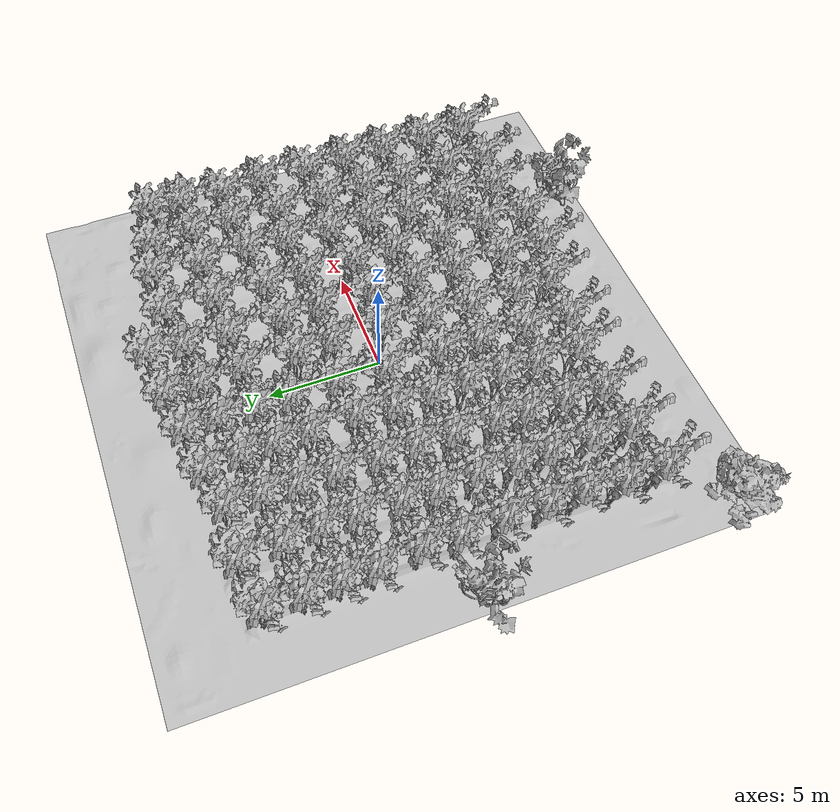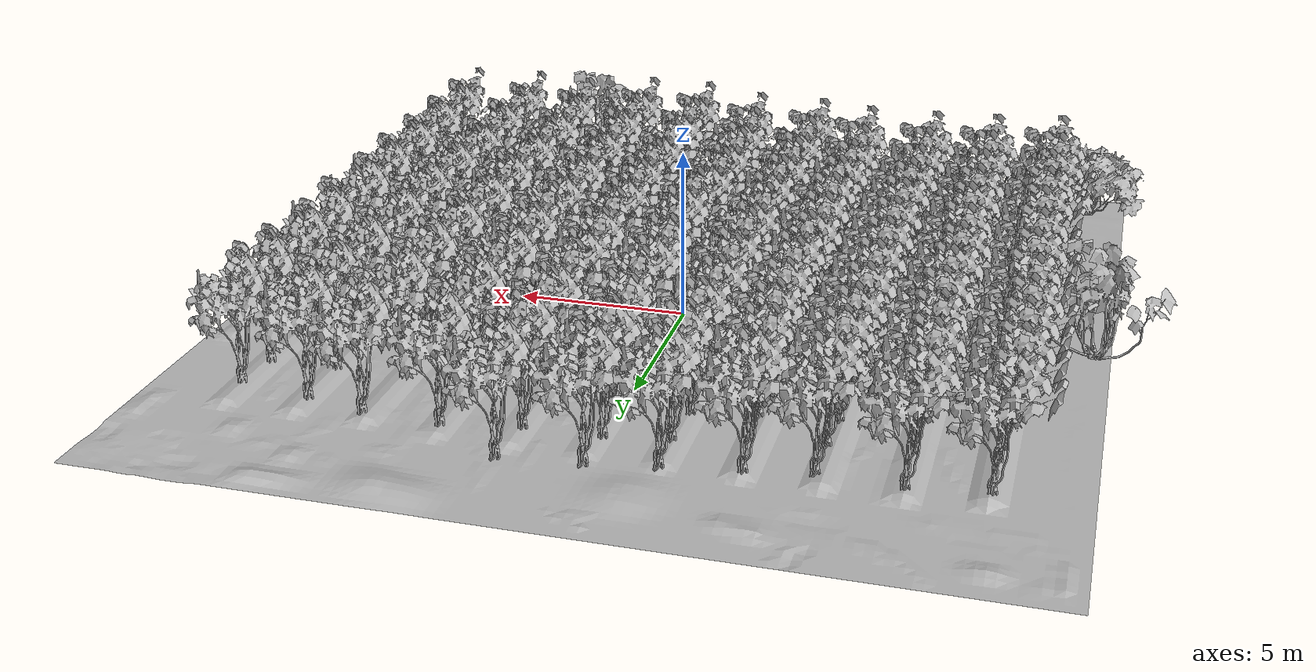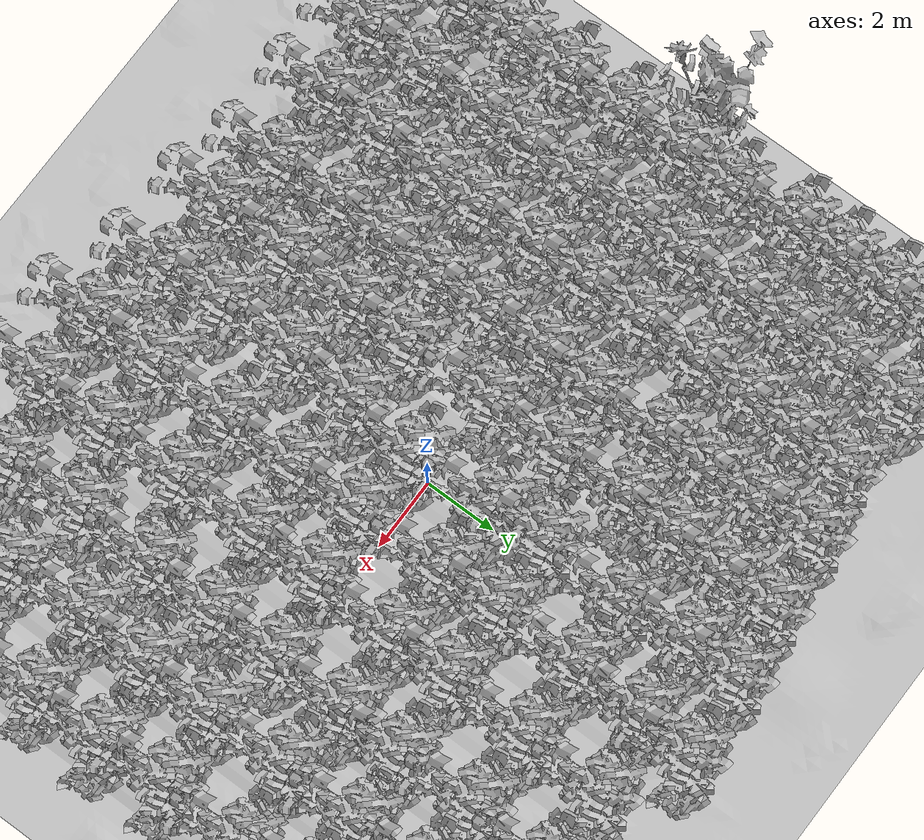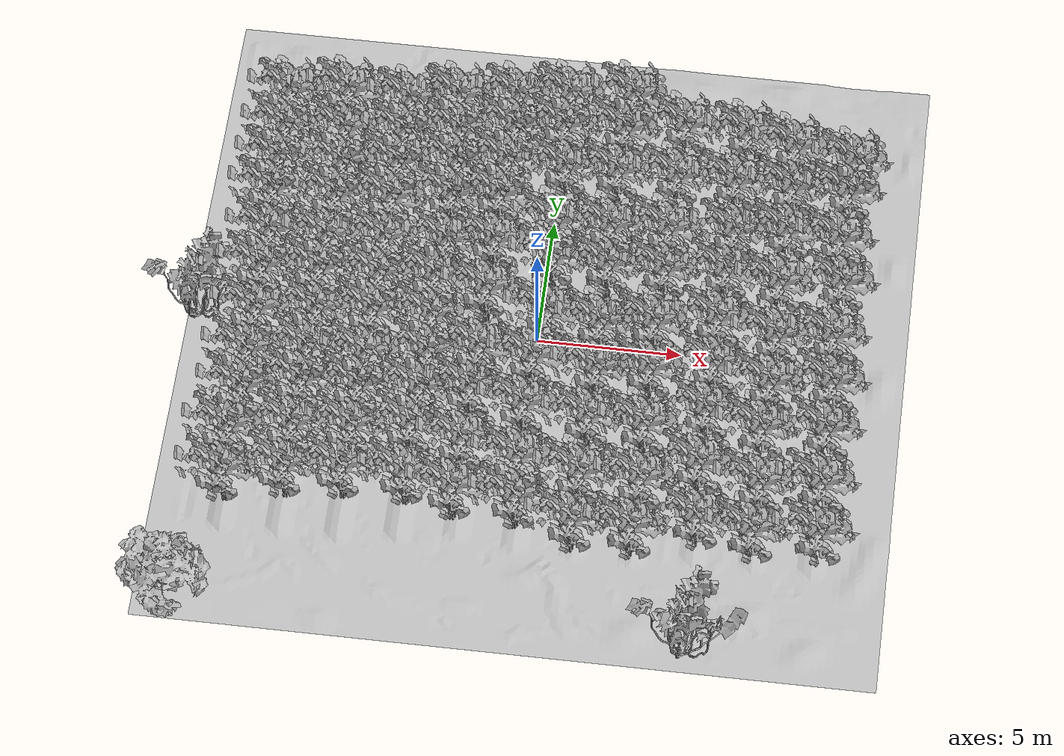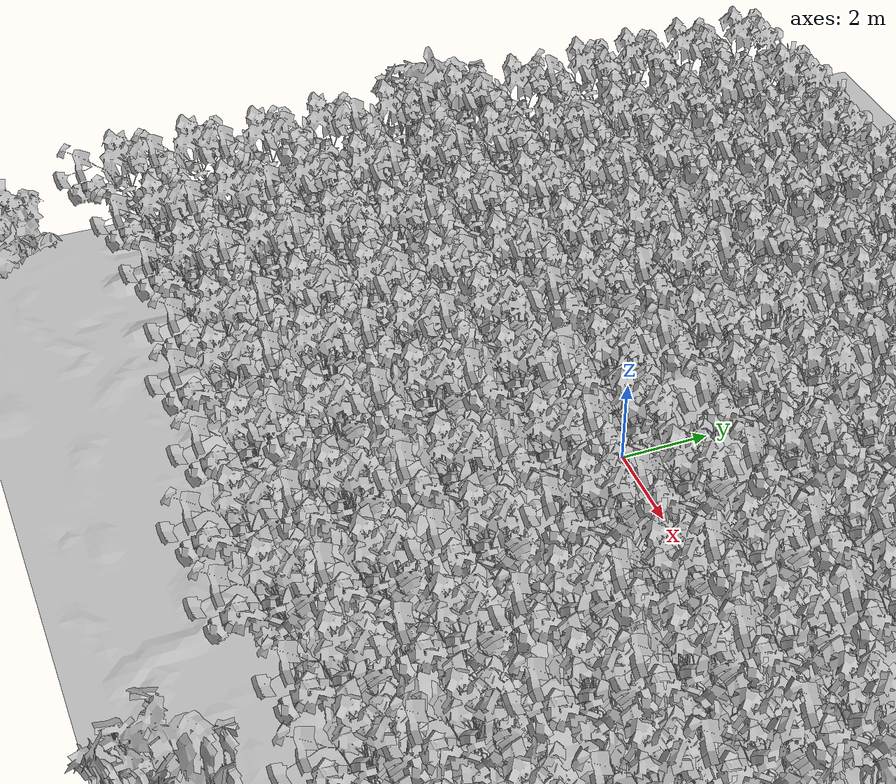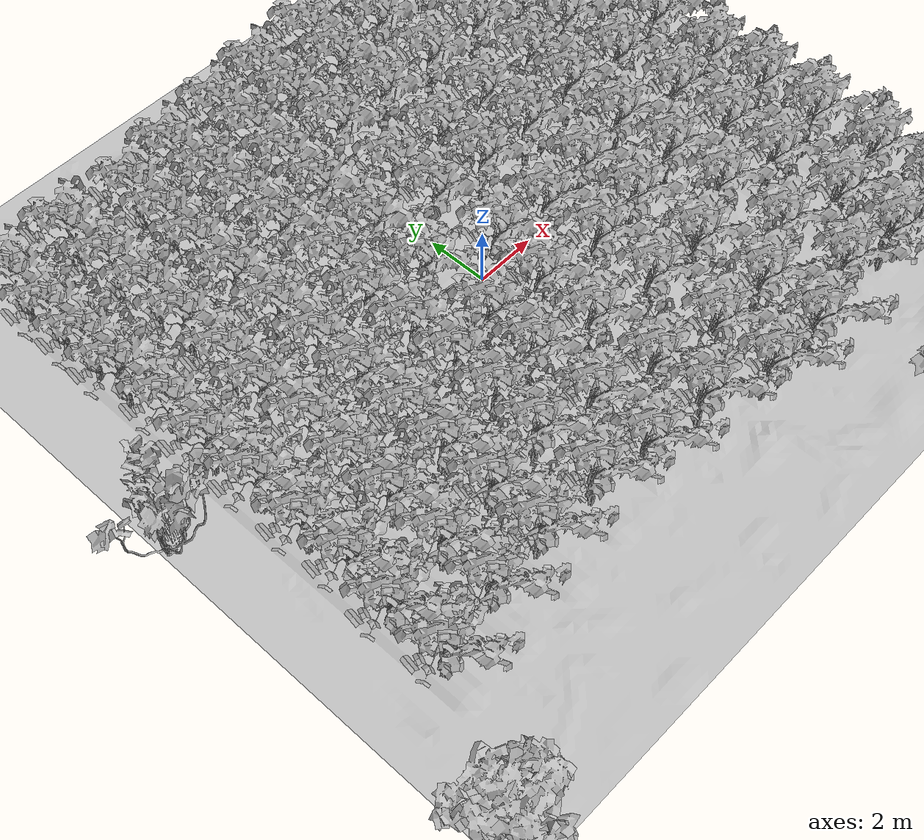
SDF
<sdf version="1.7">
 <world name="default">
  <light name="sun" type="directional">
   <pose>0 0 10 0 -0 0</pose>
   <diffuse>0.8 0.8 0.8 1</diffuse>
   <specular>0.2 0.2 0.2 1</specular>
   <attenuation>
    <range>1000</range>
    <constant>0.9</constant>
    <linear>0.01</linear>
    <quadratic>0.001</quadratic>
   </attenuation>
   <direction>-0.5 0.1 -0.9</direction>
   <spot><inner_angle>0</inner_angle><outer_angle>0</outer_angle><falloff>0</falloff></spot>
  </light>
  <physics type="ode">
   <max_step_size>0.001</max_step_size>
   <real_time_factor>1</real_time_factor>
   <real_time_update_rate>1000</real_time_update_rate>
  </physics>
  <scene><ambient>0.4 0.4 0.4 1</ambient><background>0.7 0.7 0.7 1</background><shadows>1</shadows></scene>
  <spherical_coordinates>
   <surface_model>EARTH_WGS84</surface_model>
   <latitude_deg>0</latitude_deg>
   <longitude_deg>0</longitude_deg>
   <elevation>0</elevation>
   <heading_deg>0</heading_deg>
  </spherical_coordinates>
  <gravity>0 0 -9.8</gravity>
  <magnetic_field>6e-06 2.3e-05 -4.2e-05</magnetic_field>
  <atmosphere type="adiabatic"/>
  <model name="terrain_2">
   <pose>0.265856 -0.094206 0 0 -0 0</pose>
   <static>1</static>
   <link name="body">
    <visual name="visual">
     <geometry><mesh><uri>model://terrain_2/media/terrain_2.dae</uri></mesh></geometry>
     <material>
      <script>
       <uri>model://terrain_2/media/scripts</uri>
       <uri>model://terrain_2/media/Textures</uri>
       <name>RepeatedGrass/Diffuse</name>
      </script>
     </material>
    </visual>
    <collision name="collision">
     <geometry><mesh><uri>model://terrain_2/media/terrain_2.dae</uri></mesh></geometry>
    </collision>
   </link>
  </model>
  <model name="Bush 3">
   <static>1</static>
   <pose>-11.0807 -11.2332 0 1.57079 -0 0</pose>
   <link name="link">
    <collision name="collision">
     <geometry><mesh><scale>5 5 5</scale><uri>model://bush_3/meshes/bush_3.obj</uri></mesh></geometry>
    </collision>
    <visual name="visual">
     <geometry><mesh><scale>5 5 5</scale><uri>model://bush_3/meshes/bush_3.obj</uri></mesh></geometry>
    </visual>
   </link>
  </model>
  <model name="Bush 4">
   <static>1</static>
   <pose>6.33665 -11.7657 0 1.57079 -0 0</pose>
   <link name="link">
    <collision name="collision">
     <geometry><mesh><scale>5 5 5</scale><uri>model://bush_4/meshes/bush_4.obj</uri></mesh></geometry>
    </collision>
    <visual name="visual">
     <geometry><mesh><scale>5 5 5</scale><uri>model://bush_4/meshes/bush_4.obj</uri></mesh></geometry>
    </visual>
   </link>
  </model>
  <model name="Bush 5">
   <static>1</static>
   <pose>2.12509 -8.37314 0 1.57079 -0 0</pose>
   <link name="link">
    <collision name="collision">
     <geometry><mesh><scale>5 5 5</scale><uri>model://bush_5/meshes/bush_5.obj</uri></mesh></geometry>
    </collision>
    <visual name="visual">
     <geometry><mesh><scale>5 5 5</scale><uri>model://bush_5/meshes/bush_5.obj</uri></mesh></geometry>
    </visual>
   </link>
  </model>
  <model name="Bush 4_0">
   <static>1</static>
   <pose>-11.8132 -0.203286 0 1.57079 -0 0</pose>
   <link name="link">
    <collision name="collision">
     <geometry><mesh><scale>5 5 5</scale><uri>model://bush_4/meshes/bush_4.obj</uri></mesh></geometry>
    </collision>
    <visual name="visual">
     <geometry><mesh><scale>5 5 5</scale><uri>model://bush_4/meshes/bush_4.obj</uri></mesh></geometry>
    </visual>
   </link>
  </model>
  <model name="Bush 5_0">
   <static>1</static>
   <pose>2.18418 -6.49246 0 1.57079 -0 0</pose>
   <link name="link">
    <collision name="collision">
     <geometry><mesh><scale>5 5 5</scale><uri>model://bush_5/meshes/bush_5.obj</uri></mesh></geometry>
    </collision>
    <visual name="visual">
     <geometry><mesh><scale>5 5 5</scale><uri>model://bush_5/meshes/bush_5.obj</uri></mesh></geometry>
    </visual>
   </link>
  </model>
  <model name="Bush 5_1">
   <static>1</static>
   <pose>2.20313 -4.25197 0 1.57079 -0 0</pose>
   <link name="link">
    <collision name="collision">
     <geometry><mesh><scale>5 5 5</scale><uri>model://bush_5/meshes/bush_5.obj</uri></mesh></geometry>
    </collision>
    <visual name="visual">
     <geometry><mesh><scale>5 5 5</scale><uri>model://bush_5/meshes/bush_5.obj</uri></mesh></geometry>
    </visual>
   </link>
  </model>
  <model name="Bush 5_2">
   <static>1</static>
   <pose>2.26365 -2.27175 0 1.57079 -0 0</pose>
   <link name="link">
    <collision name="collision">
     <geometry><mesh><scale>5 5 5</scale><uri>model://bush_5/meshes/bush_5.obj</uri></mesh></geometry>
    </collision>
    <visual name="visual">
     <geometry><mesh><scale>5 5 5</scale><uri>model://bush_5/meshes/bush_5.obj</uri></mesh></geometry>
    </visual>
   </link>
  </model>
  <model name="Bush 5_3">
   <static>1</static>
   <pose>2.19014 -0.397493 0 1.57079 -0 0</pose>
   <link name="link">
    <collision name="collision">
     <geometry><mesh><scale>5 5 5</scale><uri>model://bush_5/meshes/bush_5.obj</uri></mesh></geometry>
    </collision>
    <visual name="visual">
     <geometry><mesh><scale>5 5 5</scale><uri>model://bush_5/meshes/bush_5.obj</uri></mesh></geometry>
    </visual>
   </link>
  </model>
  <model name="Bush 5_4">
   <static>1</static>
   <pose>2.19123 2.04673 0 1.57079 -0 0</pose>
   <link name="link">
    <collision name="collision">
     <geometry><mesh><scale>5 5 5</scale><uri>model://bush_5/meshes/bush_5.obj</uri></mesh></geometry>
    </collision>
    <visual name="visual">
     <geometry><mesh><scale>5 5 5</scale><uri>model://bush_5/meshes/bush_5.obj</uri></mesh></geometry>
    </visual>
   </link>
  </model>
  <model name="Bush 5_5">
   <static>1</static>
   <pose>2.10999 3.6697 0 1.57079 -0 0</pose>
   <link name="link">
    <collision name="collision">
     <geometry><mesh><scale>5 5 5</scale><uri>model://bush_5/meshes/bush_5.obj</uri></mesh></geometry>
    </collision>
    <visual name="visual">
     <geometry><mesh><scale>5 5 5</scale><uri>model://bush_5/meshes/bush_5.obj</uri></mesh></geometry>
    </visual>
   </link>
  </model>
  <model name="Bush 5_6">
   <static>1</static>
   <pose>2.09832 6.0356 0 1.57079 -0 0</pose>
   <link name="link">
    <collision name="collision">
     <geometry><mesh><scale>5 5 5</scale><uri>model://bush_5/meshes/bush_5.obj</uri></mesh></geometry>
    </collision>
    <visual name="visual">
     <geometry><mesh><scale>5 5 5</scale><uri>model://bush_5/meshes/bush_5.obj</uri></mesh></geometry>
    </visual>
   </link>
  </model>
  <model name="Bush 5_7">
   <static>1</static>
   <pose>2.14481 7.91716 0 1.57079 -0 0</pose>
   <link name="link">
    <collision name="collision">
     <geometry><mesh><scale>5 5 5</scale><uri>model://bush_5/meshes/bush_5.obj</uri></mesh></geometry>
    </collision>
    <visual name="visual">
     <geometry><mesh><scale>5 5 5</scale><uri>model://bush_5/meshes/bush_5.obj</uri></mesh></geometry>
    </visual>
   </link>
  </model>
  <model name="Bush 5_8">
   <static>1</static>
   <pose>2.3116 9.46119 0 1.57079 -0 0</pose>
   <link name="link">
    <collision name="collision">
     <geometry><mesh><scale>5 5 5</scale><uri>model://bush_5/meshes/bush_5.obj</uri></mesh></geometry>
    </collision>
    <visual name="visual">
     <geometry><mesh><scale>5 5 5</scale><uri>model://bush_5/meshes/bush_5.obj</uri></mesh></geometry>
    </visual>
   </link>
  </model>
  <model name="Bush 5_9">
   <static>1</static>
   <pose>0.171395 -7.68121 0 1.57079 -0 0</pose>
   <link name="link">
    <collision name="collision">
     <geometry><mesh><scale>5 5 5</scale><uri>model://bush_5/meshes/bush_5.obj</uri></mesh></geometry>
    </collision>
    <visual name="visual">
     <geometry><mesh><scale>5 5 5</scale><uri>model://bush_5/meshes/bush_5.obj</uri></mesh></geometry>
    </visual>
   </link>
  </model>
  <model name="Bush 5_10">
   <static>1</static>
   <pose>0.052477 -6.12295 0 1.57079 -0 0</pose>
   <link name="link">
    <collision name="collision">
     <geometry><mesh><scale>5 5 5</scale><uri>model://bush_5/meshes/bush_5.obj</uri></mesh></geometry>
    </collision>
    <visual name="visual">
     <geometry><mesh><scale>5 5 5</scale><uri>model://bush_5/meshes/bush_5.obj</uri></mesh></geometry>
    </visual>
   </link>
  </model>
  <model name="Bush 5_11">
   <static>1</static>
   <pose>-0.011281 -3.99126 0 1.57079 -0 0</pose>
   <link name="link">
    <collision name="collision">
     <geometry><mesh><scale>5 5 5</scale><uri>model://bush_5/meshes/bush_5.obj</uri></mesh></geometry>
    </collision>
    <visual name="visual">
     <geometry><mesh><scale>5 5 5</scale><uri>model://bush_5/meshes/bush_5.obj</uri></mesh></geometry>
    </visual>
   </link>
  </model>
  <model name="Bush 5_12">
   <static>1</static>
   <pose>0.065497 -2.05241 0 1.57079 -0 0</pose>
   <link name="link">
    <collision name="collision">
     <geometry><mesh><scale>5 5 5</scale><uri>model://bush_5/meshes/bush_5.obj</uri></mesh></geometry>
    </collision>
    <visual name="visual">
     <geometry><mesh><scale>5 5 5</scale><uri>model://bush_5/meshes/bush_5.obj</uri></mesh></geometry>
    </visual>
   </link>
  </model>
  <model name="Bush 5_13">
   <static>1</static>
   <pose>0.384593 -0.148976 0 1.57079 -0 0</pose>
   <link name="link">
    <collision name="collision">
     <geometry><mesh><scale>5 5 5</scale><uri>model://bush_5/meshes/bush_5.obj</uri></mesh></geometry>
    </collision>
    <visual name="visual">
     <geometry><mesh><scale>5 5 5</scale><uri>model://bush_5/meshes/bush_5.obj</uri></mesh></geometry>
    </visual>
   </link>
  </model>
  <model name="Bush 5_14">
   <static>1</static>
   <pose>0.276622 2.11417 0 1.57079 -0 0</pose>
   <link name="link">
    <collision name="collision">
     <geometry><mesh><scale>5 5 5</scale><uri>model://bush_5/meshes/bush_5.obj</uri></mesh></geometry>
    </collision>
    <visual name="visual">
     <geometry><mesh><scale>5 5 5</scale><uri>model://bush_5/meshes/bush_5.obj</uri></mesh></geometry>
    </visual>
   </link>
  </model>
  <model name="Bush 5_15">
   <static>1</static>
   <pose>0.165251 3.64167 0 1.57079 -0 0</pose>
   <link name="link">
    <collision name="collision">
     <geometry><mesh><scale>5 5 5</scale><uri>model://bush_5/meshes/bush_5.obj</uri></mesh></geometry>
    </collision>
    <visual name="visual">
     <geometry><mesh><scale>5 5 5</scale><uri>model://bush_5/meshes/bush_5.obj</uri></mesh></geometry>
    </visual>
   </link>
  </model>
  <model name="Bush 5_16">
   <static>1</static>
   <pose>0.277854 6.00098 0 1.57079 -0 0</pose>
   <link name="link">
    <collision name="collision">
     <geometry><mesh><scale>5 5 5</scale><uri>model://bush_5/meshes/bush_5.obj</uri></mesh></geometry>
    </collision>
    <visual name="visual">
     <geometry><mesh><scale>5 5 5</scale><uri>model://bush_5/meshes/bush_5.obj</uri></mesh></geometry>
    </visual>
   </link>
  </model>
  <model name="Bush 5_17">
   <static>1</static>
   <pose>0.030737 7.82654 0 1.57079 -0 0</pose>
   <link name="link">
    <collision name="collision">
     <geometry><mesh><scale>5 5 5</scale><uri>model://bush_5/meshes/bush_5.obj</uri></mesh></geometry>
    </collision>
    <visual name="visual">
     <geometry><mesh><scale>5 5 5</scale><uri>model://bush_5/meshes/bush_5.obj</uri></mesh></geometry>
    </visual>
   </link>
  </model>
  <model name="Bush 5_18">
   <static>1</static>
   <pose>0.095941 9.21528 0 1.57079 -0 0</pose>
   <link name="link">
    <collision name="collision">
     <geometry><mesh><scale>5 5 5</scale><uri>model://bush_5/meshes/bush_5.obj</uri></mesh></geometry>
    </collision>
    <visual name="visual">
     <geometry><mesh><scale>5 5 5</scale><uri>model://bush_5/meshes/bush_5.obj</uri></mesh></geometry>
    </visual>
   </link>
  </model>
  <model name="Bush 5_19">
   <static>1</static>
   <pose>-1.96556 -7.57498 0 1.57079 -0 0</pose>
   <link name="link">
    <collision name="collision">
     <geometry><mesh><scale>5 5 5</scale><uri>model://bush_5/meshes/bush_5.obj</uri></mesh></geometry>
    </collision>
    <visual name="visual">
     <geometry><mesh><scale>5 5 5</scale><uri>model://bush_5/meshes/bush_5.obj</uri></mesh></geometry>
    </visual>
   </link>
  </model>
  <model name="Bush 5_20">
   <static>1</static>
   <pose>-1.86723 -5.66006 0 1.57079 -0 0</pose>
   <link name="link">
    <collision name="collision">
     <geometry><mesh><scale>5 5 5</scale><uri>model://bush_5/meshes/bush_5.obj</uri></mesh></geometry>
    </collision>
    <visual name="visual">
     <geometry><mesh><scale>5 5 5</scale><uri>model://bush_5/meshes/bush_5.obj</uri></mesh></geometry>
    </visual>
   </link>
  </model>
  <model name="Bush 5_21">
   <static>1</static>
   <pose>-1.86908 -3.55823 0 1.57079 -0 0</pose>
   <link name="link">
    <collision name="collision">
     <geometry><mesh><scale>5 5 5</scale><uri>model://bush_5/meshes/bush_5.obj</uri></mesh></geometry>
    </collision>
    <visual name="visual">
     <geometry><mesh><scale>5 5 5</scale><uri>model://bush_5/meshes/bush_5.obj</uri></mesh></geometry>
    </visual>
   </link>
  </model>
  <model name="Bush 5_22">
   <static>1</static>
   <pose>-1.7708 -1.88235 0 1.57079 -0 0</pose>
   <link name="link">
    <collision name="collision">
     <geometry><mesh><scale>5 5 5</scale><uri>model://bush_5/meshes/bush_5.obj</uri></mesh></geometry>
    </collision>
    <visual name="visual">
     <geometry><mesh><scale>5 5 5</scale><uri>model://bush_5/meshes/bush_5.obj</uri></mesh></geometry>
    </visual>
   </link>
  </model>
  <model name="Bush 5_23">
   <static>1</static>
   <pose>-1.85912 0.560302 0 1.57079 -0 0</pose>
   <link name="link">
    <collision name="collision">
     <geometry><mesh><scale>5 5 5</scale><uri>model://bush_5/meshes/bush_5.obj</uri></mesh></geometry>
    </collision>
    <visual name="visual">
     <geometry><mesh><scale>5 5 5</scale><uri>model://bush_5/meshes/bush_5.obj</uri></mesh></geometry>
    </visual>
   </link>
  </model>
  <model name="Bush 5_24">
   <static>1</static>
   <pose>-1.81174 2.60425 0 1.57079 -0 0</pose>
   <link name="link">
    <collision name="collision">
     <geometry><mesh><scale>5 5 5</scale><uri>model://bush_5/meshes/bush_5.obj</uri></mesh></geometry>
    </collision>
    <visual name="visual">
     <geometry><mesh><scale>5 5 5</scale><uri>model://bush_5/meshes/bush_5.obj</uri></mesh></geometry>
    </visual>
   </link>
  </model>
  <model name="Bush 5_25">
   <static>1</static>
   <pose>-1.88699 4.58157 0 1.57079 -0 0</pose>
   <link name="link">
    <collision name="collision">
     <geometry><mesh><scale>5 5 5</scale><uri>model://bush_5/meshes/bush_5.obj</uri></mesh></geometry>
    </collision>
    <visual name="visual">
     <geometry><mesh><scale>5 5 5</scale><uri>model://bush_5/meshes/bush_5.obj</uri></mesh></geometry>
    </visual>
   </link>
  </model>
  <model name="Bush 5_26">
   <static>1</static>
   <pose>-1.80266 6.07358 0 1.57079 -0 0</pose>
   <link name="link">
    <collision name="collision">
     <geometry><mesh><scale>5 5 5</scale><uri>model://bush_5/meshes/bush_5.obj</uri></mesh></geometry>
    </collision>
    <visual name="visual">
     <geometry><mesh><scale>5 5 5</scale><uri>model://bush_5/meshes/bush_5.obj</uri></mesh></geometry>
    </visual>
   </link>
  </model>
  <model name="Bush 5_27">
   <static>1</static>
   <pose>-1.70505 7.57183 0 1.57079 -0 0</pose>
   <link name="link">
    <collision name="collision">
     <geometry><mesh><scale>5 5 5</scale><uri>model://bush_5/meshes/bush_5.obj</uri></mesh></geometry>
    </collision>
    <visual name="visual">
     <geometry><mesh><scale>5 5 5</scale><uri>model://bush_5/meshes/bush_5.obj</uri></mesh></geometry>
    </visual>
   </link>
  </model>
  <model name="Bush 5_28">
   <static>1</static>
   <pose>-1.74724 8.92138 0 1.57079 -0 0</pose>
   <link name="link">
    <collision name="collision">
     <geometry><mesh><scale>5 5 5</scale><uri>model://bush_5/meshes/bush_5.obj</uri></mesh></geometry>
    </collision>
    <visual name="visual">
     <geometry><mesh><scale>5 5 5</scale><uri>model://bush_5/meshes/bush_5.obj</uri></mesh></geometry>
    </visual>
   </link>
  </model>
  <model name="Bush 5_29">
   <static>1</static>
   <pose>-3.79677 8.67352 0 1.57079 -0 0</pose>
   <link name="link">
    <collision name="collision">
     <geometry><mesh><scale>5 5 5</scale><uri>model://bush_5/meshes/bush_5.obj</uri></mesh></geometry>
    </collision>
    <visual name="visual">
     <geometry><mesh><scale>5 5 5</scale><uri>model://bush_5/meshes/bush_5.obj</uri></mesh></geometry>
    </visual>
   </link>
  </model>
  <model name="Bush 5_30">
   <static>1</static>
   <pose>-3.59503 7.16585 0 1.57079 -0 0</pose>
   <link name="link">
    <collision name="collision">
     <geometry><mesh><scale>5 5 5</scale><uri>model://bush_5/meshes/bush_5.obj</uri></mesh></geometry>
    </collision>
    <visual name="visual">
     <geometry><mesh><scale>5 5 5</scale><uri>model://bush_5/meshes/bush_5.obj</uri></mesh></geometry>
    </visual>
   </link>
  </model>
  <model name="Bush 5_31">
   <static>1</static>
   <pose>-3.55314 5.81491 0 1.57079 -0 0</pose>
   <link name="link">
    <collision name="collision">
     <geometry><mesh><scale>5 5 5</scale><uri>model://bush_5/meshes/bush_5.obj</uri></mesh></geometry>
    </collision>
    <visual name="visual">
     <geometry><mesh><scale>5 5 5</scale><uri>model://bush_5/meshes/bush_5.obj</uri></mesh></geometry>
    </visual>
   </link>
  </model>
  <model name="Bush 5_32">
   <static>1</static>
   <pose>-3.54236 4.36547 0 1.57079 -0 0</pose>
   <link name="link">
    <collision name="collision">
     <geometry><mesh><scale>5 5 5</scale><uri>model://bush_5/meshes/bush_5.obj</uri></mesh></geometry>
    </collision>
    <visual name="visual">
     <geometry><mesh><scale>5 5 5</scale><uri>model://bush_5/meshes/bush_5.obj</uri></mesh></geometry>
    </visual>
   </link>
  </model>
  <model name="Bush 5_33">
   <static>1</static>
   <pose>-3.45705 2.38943 0 1.57079 -0 0</pose>
   <link name="link">
    <collision name="collision">
     <geometry><mesh><scale>5 5 5</scale><uri>model://bush_5/meshes/bush_5.obj</uri></mesh></geometry>
    </collision>
    <visual name="visual">
     <geometry><mesh><scale>5 5 5</scale><uri>model://bush_5/meshes/bush_5.obj</uri></mesh></geometry>
    </visual>
   </link>
  </model>
  <model name="Bush 5_34">
   <static>1</static>
   <pose>-3.65049 0.880319 0 1.57079 -0 0</pose>
   <link name="link">
    <collision name="collision">
     <geometry><mesh><scale>5 5 5</scale><uri>model://bush_5/meshes/bush_5.obj</uri></mesh></geometry>
    </collision>
    <visual name="visual">
     <geometry><mesh><scale>5 5 5</scale><uri>model://bush_5/meshes/bush_5.obj</uri></mesh></geometry>
    </visual>
   </link>
  </model>
  <model name="Bush 5_35">
   <static>1</static>
   <pose>-3.54768 -0.767078 0 1.57079 -0 0</pose>
   <link name="link">
    <collision name="collision">
     <geometry><mesh><scale>5 5 5</scale><uri>model://bush_5/meshes/bush_5.obj</uri></mesh></geometry>
    </collision>
    <visual name="visual">
     <geometry><mesh><scale>5 5 5</scale><uri>model://bush_5/meshes/bush_5.obj</uri></mesh></geometry>
    </visual>
   </link>
  </model>
  <model name="Bush 5_36">
   <static>1</static>
   <pose>-3.46752 -2.28425 0 1.57079 -0 0</pose>
   <link name="link">
    <collision name="collision">
     <geometry><mesh><scale>5 5 5</scale><uri>model://bush_5/meshes/bush_5.obj</uri></mesh></geometry>
    </collision>
    <visual name="visual">
     <geometry><mesh><scale>5 5 5</scale><uri>model://bush_5/meshes/bush_5.obj</uri></mesh></geometry>
    </visual>
   </link>
  </model>
  <model name="Bush 5_37">
   <static>1</static>
   <pose>-3.56959 -3.80472 0 1.57079 -0 0</pose>
   <link name="link">
    <collision name="collision">
     <geometry><mesh><scale>5 5 5</scale><uri>model://bush_5/meshes/bush_5.obj</uri></mesh></geometry>
    </collision>
    <visual name="visual">
     <geometry><mesh><scale>5 5 5</scale><uri>model://bush_5/meshes/bush_5.obj</uri></mesh></geometry>
    </visual>
   </link>
  </model>
  <model name="Bush 5_38">
   <static>1</static>
   <pose>-3.64972 -5.25924 0 1.57079 -0 0</pose>
   <link name="link">
    <collision name="collision">
     <geometry><mesh><scale>5 5 5</scale><uri>model://bush_5/meshes/bush_5.obj</uri></mesh></geometry>
    </collision>
    <visual name="visual">
     <geometry><mesh><scale>5 5 5</scale><uri>model://bush_5/meshes/bush_5.obj</uri></mesh></geometry>
    </visual>
   </link>
  </model>
  <model name="Bush 5_39">
   <static>1</static>
   <pose>-3.60752 -7.1918 0 1.57079 -0 0</pose>
   <link name="link">
    <collision name="collision">
     <geometry><mesh><scale>5 5 5</scale><uri>model://bush_5/meshes/bush_5.obj</uri></mesh></geometry>
    </collision>
    <visual name="visual">
     <geometry><mesh><scale>5 5 5</scale><uri>model://bush_5/meshes/bush_5.obj</uri></mesh></geometry>
    </visual>
   </link>
  </model>
  <model name="Bush 5_40">
   <static>1</static>
   <pose>-5.73111 -7.21149 0 1.57079 -0 0</pose>
   <link name="link">
    <collision name="collision">
     <geometry><mesh><scale>5 5 5</scale><uri>model://bush_5/meshes/bush_5.obj</uri></mesh></geometry>
    </collision>
    <visual name="visual">
     <geometry><mesh><scale>5 5 5</scale><uri>model://bush_5/meshes/bush_5.obj</uri></mesh></geometry>
    </visual>
   </link>
  </model>
  <model name="Bush 5_41">
   <static>1</static>
   <pose>-5.63976 -5.54525 0 1.57079 -0 0</pose>
   <link name="link">
    <collision name="collision">
     <geometry><mesh><scale>5 5 5</scale><uri>model://bush_5/meshes/bush_5.obj</uri></mesh></geometry>
    </collision>
    <visual name="visual">
     <geometry><mesh><scale>5 5 5</scale><uri>model://bush_5/meshes/bush_5.obj</uri></mesh></geometry>
    </visual>
   </link>
  </model>
  <model name="Bush 5_42">
   <static>1</static>
   <pose>-5.63445 -3.88723 0 1.57079 -0 0</pose>
   <link name="link">
    <collision name="collision">
     <geometry><mesh><scale>5 5 5</scale><uri>model://bush_5/meshes/bush_5.obj</uri></mesh></geometry>
    </collision>
    <visual name="visual">
     <geometry><mesh><scale>5 5 5</scale><uri>model://bush_5/meshes/bush_5.obj</uri></mesh></geometry>
    </visual>
   </link>
  </model>
  <model name="Bush 5_43">
   <static>1</static>
   <pose>-5.55841 -2.62189 0 1.57079 -0 0</pose>
   <link name="link">
    <collision name="collision">
     <geometry><mesh><scale>5 5 5</scale><uri>model://bush_5/meshes/bush_5.obj</uri></mesh></geometry>
    </collision>
    <visual name="visual">
     <geometry><mesh><scale>5 5 5</scale><uri>model://bush_5/meshes/bush_5.obj</uri></mesh></geometry>
    </visual>
   </link>
  </model>
  <model name="Bush 5_44">
   <static>1</static>
   <pose>-5.59646 -0.798518 0 1.57079 -0 0</pose>
   <link name="link">
    <collision name="collision">
     <geometry><mesh><scale>5 5 5</scale><uri>model://bush_5/meshes/bush_5.obj</uri></mesh></geometry>
    </collision>
    <visual name="visual">
     <geometry><mesh><scale>5 5 5</scale><uri>model://bush_5/meshes/bush_5.obj</uri></mesh></geometry>
    </visual>
   </link>
  </model>
  <model name="Bush 5_45">
   <static>1</static>
   <pose>-5.57825 0.717758 0 1.57079 -0 0</pose>
   <link name="link">
    <collision name="collision">
     <geometry><mesh><scale>5 5 5</scale><uri>model://bush_5/meshes/bush_5.obj</uri></mesh></geometry>
    </collision>
    <visual name="visual">
     <geometry><mesh><scale>5 5 5</scale><uri>model://bush_5/meshes/bush_5.obj</uri></mesh></geometry>
    </visual>
   </link>
  </model>
  <model name="Bush 5_46">
   <static>1</static>
   <pose>-5.60319 2.26558 0 1.57079 -0 0</pose>
   <link name="link">
    <collision name="collision">
     <geometry><mesh><scale>5 5 5</scale><uri>model://bush_5/meshes/bush_5.obj</uri></mesh></geometry>
    </collision>
    <visual name="visual">
     <geometry><mesh><scale>5 5 5</scale><uri>model://bush_5/meshes/bush_5.obj</uri></mesh></geometry>
    </visual>
   </link>
  </model>
  <model name="Bush 5_47">
   <static>1</static>
   <pose>-5.61126 3.99517 0 1.57079 -0 0</pose>
   <link name="link">
    <collision name="collision">
     <geometry><mesh><scale>5 5 5</scale><uri>model://bush_5/meshes/bush_5.obj</uri></mesh></geometry>
    </collision>
    <visual name="visual">
     <geometry><mesh><scale>5 5 5</scale><uri>model://bush_5/meshes/bush_5.obj</uri></mesh></geometry>
    </visual>
   </link>
  </model>
  <model name="Bush 5_48">
   <static>1</static>
   <pose>-5.61571 5.53735 0 1.57079 -0 0</pose>
   <link name="link">
    <collision name="collision">
     <geometry><mesh><scale>5 5 5</scale><uri>model://bush_5/meshes/bush_5.obj</uri></mesh></geometry>
    </collision>
    <visual name="visual">
     <geometry><mesh><scale>5 5 5</scale><uri>model://bush_5/meshes/bush_5.obj</uri></mesh></geometry>
    </visual>
   </link>
  </model>
  <model name="Bush 5_49">
   <static>1</static>
   <pose>-5.53296 6.876 0 1.57079 -0 0</pose>
   <link name="link">
    <collision name="collision">
     <geometry><mesh><scale>5 5 5</scale><uri>model://bush_5/meshes/bush_5.obj</uri></mesh></geometry>
    </collision>
    <visual name="visual">
     <geometry><mesh><scale>5 5 5</scale><uri>model://bush_5/meshes/bush_5.obj</uri></mesh></geometry>
    </visual>
   </link>
  </model>
  <model name="Bush 5_50">
   <static>1</static>
   <pose>-5.51492 8.29597 0 1.57079 -0 0</pose>
   <link name="link">
    <collision name="collision">
     <geometry><mesh><scale>5 5 5</scale><uri>model://bush_5/meshes/bush_5.obj</uri></mesh></geometry>
    </collision>
    <visual name="visual">
     <geometry><mesh><scale>5 5 5</scale><uri>model://bush_5/meshes/bush_5.obj</uri></mesh></geometry>
    </visual>
   </link>
  </model>
  <model name="Bush 5_51">
   <static>1</static>
   <pose>4.24893 8.31625 0 1.57079 -0 0</pose>
   <link name="link">
    <collision name="collision">
     <geometry><mesh><scale>5 5 5</scale><uri>model://bush_5/meshes/bush_5.obj</uri></mesh></geometry>
    </collision>
    <visual name="visual">
     <geometry><mesh><scale>5 5 5</scale><uri>model://bush_5/meshes/bush_5.obj</uri></mesh></geometry>
    </visual>
   </link>
  </model>
  <model name="Bush 5_52">
   <static>1</static>
   <pose>4.17596 6.07098 0 1.57079 -0 0</pose>
   <link name="link">
    <collision name="collision">
     <geometry><mesh><scale>5 5 5</scale><uri>model://bush_5/meshes/bush_5.obj</uri></mesh></geometry>
    </collision>
    <visual name="visual">
     <geometry><mesh><scale>5 5 5</scale><uri>model://bush_5/meshes/bush_5.obj</uri></mesh></geometry>
    </visual>
   </link>
  </model>
  <model name="Bush 5_53">
   <static>1</static>
   <pose>4.08856 3.78959 0 1.57079 -0 0</pose>
   <link name="link">
    <collision name="collision">
     <geometry><mesh><scale>5 5 5</scale><uri>model://bush_5/meshes/bush_5.obj</uri></mesh></geometry>
    </collision>
    <visual name="visual">
     <geometry><mesh><scale>5 5 5</scale><uri>model://bush_5/meshes/bush_5.obj</uri></mesh></geometry>
    </visual>
   </link>
  </model>
  <model name="Bush 5_54">
   <static>1</static>
   <pose>4.13924 2.07433 0 1.57079 -0 0</pose>
   <link name="link">
    <collision name="collision">
     <geometry><mesh><scale>5 5 5</scale><uri>model://bush_5/meshes/bush_5.obj</uri></mesh></geometry>
    </collision>
    <visual name="visual">
     <geometry><mesh><scale>5 5 5</scale><uri>model://bush_5/meshes/bush_5.obj</uri></mesh></geometry>
    </visual>
   </link>
  </model>
  <model name="Bush 5_55">
   <static>1</static>
   <pose>4.01473 -0.165247 0 1.57079 -0 0</pose>
   <link name="link">
    <collision name="collision">
     <geometry><mesh><scale>5 5 5</scale><uri>model://bush_5/meshes/bush_5.obj</uri></mesh></geometry>
    </collision>
    <visual name="visual">
     <geometry><mesh><scale>5 5 5</scale><uri>model://bush_5/meshes/bush_5.obj</uri></mesh></geometry>
    </visual>
   </link>
  </model>
  <model name="Bush 5_56">
   <static>1</static>
   <pose>4.05637 -2.0558 0 1.57079 -0 0</pose>
   <link name="link">
    <collision name="collision">
     <geometry><mesh><scale>5 5 5</scale><uri>model://bush_5/meshes/bush_5.obj</uri></mesh></geometry>
    </collision>
    <visual name="visual">
     <geometry><mesh><scale>5 5 5</scale><uri>model://bush_5/meshes/bush_5.obj</uri></mesh></geometry>
    </visual>
   </link>
  </model>
  <model name="Bush 5_57">
   <static>1</static>
   <pose>4.11048 -4.33292 0 1.57079 -0 0</pose>
   <link name="link">
    <collision name="collision">
     <geometry><mesh><scale>5 5 5</scale><uri>model://bush_5/meshes/bush_5.obj</uri></mesh></geometry>
    </collision>
    <visual name="visual">
     <geometry><mesh><scale>5 5 5</scale><uri>model://bush_5/meshes/bush_5.obj</uri></mesh></geometry>
    </visual>
   </link>
  </model>
  <model name="Bush 5_58">
   <static>1</static>
   <pose>4.21825 -6.49822 0 1.57079 -0 0</pose>
   <link name="link">
    <collision name="collision">
     <geometry><mesh><scale>5 5 5</scale><uri>model://bush_5/meshes/bush_5.obj</uri></mesh></geometry>
    </collision>
    <visual name="visual">
     <geometry><mesh><scale>5 5 5</scale><uri>model://bush_5/meshes/bush_5.obj</uri></mesh></geometry>
    </visual>
   </link>
  </model>
  <model name="Bush 5_59">
   <static>1</static>
   <pose>4.10255 -8.39166 0 1.57079 -0 0</pose>
   <link name="link">
    <collision name="collision">
     <geometry><mesh><scale>5 5 5</scale><uri>model://bush_5/meshes/bush_5.obj</uri></mesh></geometry>
    </collision>
    <visual name="visual">
     <geometry><mesh><scale>5 5 5</scale><uri>model://bush_5/meshes/bush_5.obj</uri></mesh></geometry>
    </visual>
   </link>
  </model>
  <model name="Bush 5_60">
   <static>1</static>
   <pose>6.44767 8.22679 0 1.57079 -0 0</pose>
   <link name="link">
    <collision name="collision">
     <geometry><mesh><scale>5 5 5</scale><uri>model://bush_5/meshes/bush_5.obj</uri></mesh></geometry>
    </collision>
    <visual name="visual">
     <geometry><mesh><scale>5 5 5</scale><uri>model://bush_5/meshes/bush_5.obj</uri></mesh></geometry>
    </visual>
   </link>
  </model>
  <model name="Bush 5_61">
   <static>1</static>
   <pose>6.2203 6.08736 0 1.57079 -0 0</pose>
   <link name="link">
    <collision name="collision">
     <geometry><mesh><scale>5 5 5</scale><uri>model://bush_5/meshes/bush_5.obj</uri></mesh></geometry>
    </collision>
    <visual name="visual">
     <geometry><mesh><scale>5 5 5</scale><uri>model://bush_5/meshes/bush_5.obj</uri></mesh></geometry>
    </visual>
   </link>
  </model>
  <model name="Bush 5_62">
   <static>1</static>
   <pose>6.37103 3.96067 0 1.57079 -0 0</pose>
   <link name="link">
    <collision name="collision">
     <geometry><mesh><scale>5 5 5</scale><uri>model://bush_5/meshes/bush_5.obj</uri></mesh></geometry>
    </collision>
    <visual name="visual">
     <geometry><mesh><scale>5 5 5</scale><uri>model://bush_5/meshes/bush_5.obj</uri></mesh></geometry>
    </visual>
   </link>
  </model>
  <model name="Bush 5_63">
   <static>1</static>
   <pose>6.22927 2.26163 0 1.57079 -0 0</pose>
   <link name="link">
    <collision name="collision">
     <geometry><mesh><scale>5 5 5</scale><uri>model://bush_5/meshes/bush_5.obj</uri></mesh></geometry>
    </collision>
    <visual name="visual">
     <geometry><mesh><scale>5 5 5</scale><uri>model://bush_5/meshes/bush_5.obj</uri></mesh></geometry>
    </visual>
   </link>
  </model>
  <model name="Bush 5_64">
   <static>1</static>
   <pose>6.13918 0.242949 0 1.57079 -0 0</pose>
   <link name="link">
    <collision name="collision">
     <geometry><mesh><scale>5 5 5</scale><uri>model://bush_5/meshes/bush_5.obj</uri></mesh></geometry>
    </collision>
    <visual name="visual">
     <geometry><mesh><scale>5 5 5</scale><uri>model://bush_5/meshes/bush_5.obj</uri></mesh></geometry>
    </visual>
   </link>
  </model>
  <model name="Bush 5_65">
   <static>1</static>
   <pose>6.20145 -1.62858 0 1.57079 -0 0</pose>
   <link name="link">
    <collision name="collision">
     <geometry><mesh><scale>5 5 5</scale><uri>model://bush_5/meshes/bush_5.obj</uri></mesh></geometry>
    </collision>
    <visual name="visual">
     <geometry><mesh><scale>5 5 5</scale><uri>model://bush_5/meshes/bush_5.obj</uri></mesh></geometry>
    </visual>
   </link>
  </model>
  <model name="Bush 5_66">
   <static>1</static>
   <pose>6.13611 -3.51095 0 1.57079 -0 0</pose>
   <link name="link">
    <collision name="collision">
     <geometry><mesh><scale>5 5 5</scale><uri>model://bush_5/meshes/bush_5.obj</uri></mesh></geometry>
    </collision>
    <visual name="visual">
     <geometry><mesh><scale>5 5 5</scale><uri>model://bush_5/meshes/bush_5.obj</uri></mesh></geometry>
    </visual>
   </link>
  </model>
  <model name="Bush 5_67">
   <static>1</static>
   <pose>6.0733 -5.65638 0 1.57079 -0 0</pose>
   <link name="link">
    <collision name="collision">
     <geometry><mesh><scale>5 5 5</scale><uri>model://bush_5/meshes/bush_5.obj</uri></mesh></geometry>
    </collision>
    <visual name="visual">
     <geometry><mesh><scale>5 5 5</scale><uri>model://bush_5/meshes/bush_5.obj</uri></mesh></geometry>
    </visual>
   </link>
  </model>
  <model name="Bush 5_68">
   <static>1</static>
   <pose>6.22467 -7.7701 0 1.57079 -0 0</pose>
   <link name="link">
    <collision name="collision">
     <geometry><mesh><scale>5 5 5</scale><uri>model://bush_5/meshes/bush_5.obj</uri></mesh></geometry>
    </collision>
    <visual name="visual">
     <geometry><mesh><scale>5 5 5</scale><uri>model://bush_5/meshes/bush_5.obj</uri></mesh></geometry>
    </visual>
   </link>
  </model>
  <model name="Bush 5_69">
   <static>1</static>
   <pose>8.08551 -8.06438 0 1.57079 -0 0</pose>
   <link name="link">
    <collision name="collision">
     <geometry><mesh><scale>5 5 5</scale><uri>model://bush_5/meshes/bush_5.obj</uri></mesh></geometry>
    </collision>
    <visual name="visual">
     <geometry><mesh><scale>5 5 5</scale><uri>model://bush_5/meshes/bush_5.obj</uri></mesh></geometry>
    </visual>
   </link>
  </model>
  <model name="Bush 5_70">
   <static>1</static>
   <pose>8.1828 -6.19784 0 1.57079 -0 0</pose>
   <link name="link">
    <collision name="collision">
     <geometry><mesh><scale>5 5 5</scale><uri>model://bush_5/meshes/bush_5.obj</uri></mesh></geometry>
    </collision>
    <visual name="visual">
     <geometry><mesh><scale>5 5 5</scale><uri>model://bush_5/meshes/bush_5.obj</uri></mesh></geometry>
    </visual>
   </link>
  </model>
  <model name="Bush 5_71">
   <static>1</static>
   <pose>8.04327 -4.00199 0 1.57079 -0 0</pose>
   <link name="link">
    <collision name="collision">
     <geometry><mesh><scale>5 5 5</scale><uri>model://bush_5/meshes/bush_5.obj</uri></mesh></geometry>
    </collision>
    <visual name="visual">
     <geometry><mesh><scale>5 5 5</scale><uri>model://bush_5/meshes/bush_5.obj</uri></mesh></geometry>
    </visual>
   </link>
  </model>
  <model name="Bush 5_72">
   <static>1</static>
   <pose>8.16863 -2.16511 0 1.57079 -0 0</pose>
   <link name="link">
    <collision name="collision">
     <geometry><mesh><scale>5 5 5</scale><uri>model://bush_5/meshes/bush_5.obj</uri></mesh></geometry>
    </collision>
    <visual name="visual">
     <geometry><mesh><scale>5 5 5</scale><uri>model://bush_5/meshes/bush_5.obj</uri></mesh></geometry>
    </visual>
   </link>
  </model>
  <model name="Bush 5_73">
   <static>1</static>
   <pose>8.19217 -0.225862 0 1.57079 -0 0</pose>
   <link name="link">
    <collision name="collision">
     <geometry><mesh><scale>5 5 5</scale><uri>model://bush_5/meshes/bush_5.obj</uri></mesh></geometry>
    </collision>
    <visual name="visual">
     <geometry><mesh><scale>5 5 5</scale><uri>model://bush_5/meshes/bush_5.obj</uri></mesh></geometry>
    </visual>
   </link>
  </model>
  <model name="Bush 5_74">
   <static>1</static>
   <pose>8.11489 1.97467 0 1.57079 -0 0</pose>
   <link name="link">
    <collision name="collision">
     <geometry><mesh><scale>5 5 5</scale><uri>model://bush_5/meshes/bush_5.obj</uri></mesh></geometry>
    </collision>
    <visual name="visual">
     <geometry><mesh><scale>5 5 5</scale><uri>model://bush_5/meshes/bush_5.obj</uri></mesh></geometry>
    </visual>
   </link>
  </model>
  <model name="Bush 5_75">
   <static>1</static>
   <pose>8.1932 4.18824 0 1.57079 -0 0</pose>
   <link name="link">
    <collision name="collision">
     <geometry><mesh><scale>5 5 5</scale><uri>model://bush_5/meshes/bush_5.obj</uri></mesh></geometry>
    </collision>
    <visual name="visual">
     <geometry><mesh><scale>5 5 5</scale><uri>model://bush_5/meshes/bush_5.obj</uri></mesh></geometry>
    </visual>
   </link>
  </model>
  <model name="Bush 5_76">
   <static>1</static>
   <pose>8.19435 6.06765 0 1.57079 -0 0</pose>
   <link name="link">
    <collision name="collision">
     <geometry><mesh><scale>5 5 5</scale><uri>model://bush_5/meshes/bush_5.obj</uri></mesh></geometry>
    </collision>
    <visual name="visual">
     <geometry><mesh><scale>5 5 5</scale><uri>model://bush_5/meshes/bush_5.obj</uri></mesh></geometry>
    </visual>
   </link>
  </model>
  <model name="Bush 5_77">
   <static>1</static>
   <pose>8.15793 7.84705 0 1.57079 -0 0</pose>
   <link name="link">
    <collision name="collision">
     <geometry><mesh><scale>5 5 5</scale><uri>model://bush_5/meshes/bush_5.obj</uri></mesh></geometry>
    </collision>
    <visual name="visual">
     <geometry><mesh><scale>5 5 5</scale><uri>model://bush_5/meshes/bush_5.obj</uri></mesh></geometry>
    </visual>
   </link>
  </model>
  <model name="Bush 5_78">
   <static>1</static>
   <pose>10.2935 7.46575 0 1.57079 -0 0</pose>
   <link name="link">
    <collision name="collision">
     <geometry><mesh><scale>5 5 5</scale><uri>model://bush_5/meshes/bush_5.obj</uri></mesh></geometry>
    </collision>
    <visual name="visual">
     <geometry><mesh><scale>5 5 5</scale><uri>model://bush_5/meshes/bush_5.obj</uri></mesh></geometry>
    </visual>
   </link>
  </model>
  <model name="Bush 5_79">
   <static>1</static>
   <pose>10.1406 6.12332 0 1.57079 -0 0</pose>
   <link name="link">
    <collision name="collision">
     <geometry><mesh><scale>5 5 5</scale><uri>model://bush_5/meshes/bush_5.obj</uri></mesh></geometry>
    </collision>
    <visual name="visual">
     <geometry><mesh><scale>5 5 5</scale><uri>model://bush_5/meshes/bush_5.obj</uri></mesh></geometry>
    </visual>
   </link>
  </model>
  <model name="Bush 5_80">
   <static>1</static>
   <pose>10.0239 4.06655 0 1.57079 -0 0</pose>
   <link name="link">
    <collision name="collision">
     <geometry><mesh><scale>5 5 5</scale><uri>model://bush_5/meshes/bush_5.obj</uri></mesh></geometry>
    </collision>
    <visual name="visual">
     <geometry><mesh><scale>5 5 5</scale><uri>model://bush_5/meshes/bush_5.obj</uri></mesh></geometry>
    </visual>
   </link>
  </model>
  <model name="Bush 5_81">
   <static>1</static>
   <pose>10.234 2.24666 0 1.57079 -0 0</pose>
   <link name="link">
    <collision name="collision">
     <geometry><mesh><scale>5 5 5</scale><uri>model://bush_5/meshes/bush_5.obj</uri></mesh></geometry>
    </collision>
    <visual name="visual">
     <geometry><mesh><scale>5 5 5</scale><uri>model://bush_5/meshes/bush_5.obj</uri></mesh></geometry>
    </visual>
   </link>
  </model>
  <model name="Bush 5_82">
   <static>1</static>
   <pose>10.1223 -0.002253 0 1.57079 -0 0</pose>
   <link name="link">
    <collision name="collision">
     <geometry><mesh><scale>5 5 5</scale><uri>model://bush_5/meshes/bush_5.obj</uri></mesh></geometry>
    </collision>
    <visual name="visual">
     <geometry><mesh><scale>5 5 5</scale><uri>model://bush_5/meshes/bush_5.obj</uri></mesh></geometry>
    </visual>
   </link>
  </model>
  <model name="Bush 5_83">
   <static>1</static>
   <pose>10.2472 -1.88586 0 1.57079 -0 0</pose>
   <link name="link">
    <collision name="collision">
     <geometry><mesh><scale>5 5 5</scale><uri>model://bush_5/meshes/bush_5.obj</uri></mesh></geometry>
    </collision>
    <visual name="visual">
     <geometry><mesh><scale>5 5 5</scale><uri>model://bush_5/meshes/bush_5.obj</uri></mesh></geometry>
    </visual>
   </link>
  </model>
  <model name="Bush 5_84">
   <static>1</static>
   <pose>10.2195 -3.81552 0 1.57079 -0 0</pose>
   <link name="link">
    <collision name="collision">
     <geometry><mesh><scale>5 5 5</scale><uri>model://bush_5/meshes/bush_5.obj</uri></mesh></geometry>
    </collision>
    <visual name="visual">
     <geometry><mesh><scale>5 5 5</scale><uri>model://bush_5/meshes/bush_5.obj</uri></mesh></geometry>
    </visual>
   </link>
  </model>
  <model name="Bush 5_85">
   <static>1</static>
   <pose>10.2363 -5.94724 0 1.57079 -0 0</pose>
   <link name="link">
    <collision name="collision">
     <geometry><mesh><scale>5 5 5</scale><uri>model://bush_5/meshes/bush_5.obj</uri></mesh></geometry>
    </collision>
    <visual name="visual">
     <geometry><mesh><scale>5 5 5</scale><uri>model://bush_5/meshes/bush_5.obj</uri></mesh></geometry>
    </visual>
   </link>
  </model>
  <model name="Bush 5_86">
   <static>1</static>
   <pose>10.3075 -7.90143 0 1.57079 -0 0</pose>
   <link name="link">
    <collision name="collision">
     <geometry><mesh><scale>5 5 5</scale><uri>model://bush_5/meshes/bush_5.obj</uri></mesh></geometry>
    </collision>
    <visual name="visual">
     <geometry><mesh><scale>5 5 5</scale><uri>model://bush_5/meshes/bush_5.obj</uri></mesh></geometry>
    </visual>
   </link>
  </model>
  <model name="Bush 5_87">
   <static>1</static>
   <pose>-7.72878 8.45628 0 1.57079 -0 0</pose>
   <link name="link">
    <collision name="collision">
     <geometry><mesh><scale>5 5 5</scale><uri>model://bush_5/meshes/bush_5.obj</uri></mesh></geometry>
    </collision>
    <visual name="visual">
     <geometry><mesh><scale>5 5 5</scale><uri>model://bush_5/meshes/bush_5.obj</uri></mesh></geometry>
    </visual>
   </link>
  </model>
  <model name="Bush 5_88">
   <static>1</static>
   <pose>-7.66242 6.7285 0 1.57079 -0 0</pose>
   <link name="link">
    <collision name="collision">
     <geometry><mesh><scale>5 5 5</scale><uri>model://bush_5/meshes/bush_5.obj</uri></mesh></geometry>
    </collision>
    <visual name="visual">
     <geometry><mesh><scale>5 5 5</scale><uri>model://bush_5/meshes/bush_5.obj</uri></mesh></geometry>
    </visual>
   </link>
  </model>
  <model name="Bush 5_89">
   <static>1</static>
   <pose>-7.5283 5.28319 0 1.57079 -0 0</pose>
   <link name="link">
    <collision name="collision">
     <geometry><mesh><scale>5 5 5</scale><uri>model://bush_5/meshes/bush_5.obj</uri></mesh></geometry>
    </collision>
    <visual name="visual">
     <geometry><mesh><scale>5 5 5</scale><uri>model://bush_5/meshes/bush_5.obj</uri></mesh></geometry>
    </visual>
   </link>
  </model>
  <model name="Bush 5_90">
   <static>1</static>
   <pose>-7.54646 3.86242 0 1.57079 -0 0</pose>
   <link name="link">
    <collision name="collision">
     <geometry><mesh><scale>5 5 5</scale><uri>model://bush_5/meshes/bush_5.obj</uri></mesh></geometry>
    </collision>
    <visual name="visual">
     <geometry><mesh><scale>5 5 5</scale><uri>model://bush_5/meshes/bush_5.obj</uri></mesh></geometry>
    </visual>
   </link>
  </model>
  <model name="Bush 5_91">
   <static>1</static>
   <pose>-7.5959 2.09599 0 1.57079 -0 0</pose>
   <link name="link">
    <collision name="collision">
     <geometry><mesh><scale>5 5 5</scale><uri>model://bush_5/meshes/bush_5.obj</uri></mesh></geometry>
    </collision>
    <visual name="visual">
     <geometry><mesh><scale>5 5 5</scale><uri>model://bush_5/meshes/bush_5.obj</uri></mesh></geometry>
    </visual>
   </link>
  </model>
  <model name="Bush 5_92">
   <static>1</static>
   <pose>-7.66299 0.723423 0 1.57079 -0 0</pose>
   <link name="link">
    <collision name="collision">
     <geometry><mesh><scale>5 5 5</scale><uri>model://bush_5/meshes/bush_5.obj</uri></mesh></geometry>
    </collision>
    <visual name="visual">
     <geometry><mesh><scale>5 5 5</scale><uri>model://bush_5/meshes/bush_5.obj</uri></mesh></geometry>
    </visual>
   </link>
  </model>
  <model name="Bush 5_93">
   <static>1</static>
   <pose>-7.49305 -0.977974 0 1.57079 -0 0</pose>
   <link name="link">
    <collision name="collision">
     <geometry><mesh><scale>5 5 5</scale><uri>model://bush_5/meshes/bush_5.obj</uri></mesh></geometry>
    </collision>
    <visual name="visual">
     <geometry><mesh><scale>5 5 5</scale><uri>model://bush_5/meshes/bush_5.obj</uri></mesh></geometry>
    </visual>
   </link>
  </model>
  <model name="Bush 5_94">
   <static>1</static>
   <pose>-7.57083 -2.58921 0 1.57079 -0 0</pose>
   <link name="link">
    <collision name="collision">
     <geometry><mesh><scale>5 5 5</scale><uri>model://bush_5/meshes/bush_5.obj</uri></mesh></geometry>
    </collision>
    <visual name="visual">
     <geometry><mesh><scale>5 5 5</scale><uri>model://bush_5/meshes/bush_5.obj</uri></mesh></geometry>
    </visual>
   </link>
  </model>
  <model name="Bush 5_95">
   <static>1</static>
   <pose>-7.57917 -3.91199 0 1.57079 -0 0</pose>
   <link name="link">
    <collision name="collision">
     <geometry><mesh><scale>5 5 5</scale><uri>model://bush_5/meshes/bush_5.obj</uri></mesh></geometry>
    </collision>
    <visual name="visual">
     <geometry><mesh><scale>5 5 5</scale><uri>model://bush_5/meshes/bush_5.obj</uri></mesh></geometry>
    </visual>
   </link>
  </model>
  <model name="Bush 5_96">
   <static>1</static>
   <pose>-7.61707 -5.72142 0 1.57079 -0 0</pose>
   <link name="link">
    <collision name="collision">
     <geometry><mesh><scale>5 5 5</scale><uri>model://bush_5/meshes/bush_5.obj</uri></mesh></geometry>
    </collision>
    <visual name="visual">
     <geometry><mesh><scale>5 5 5</scale><uri>model://bush_5/meshes/bush_5.obj</uri></mesh></geometry>
    </visual>
   </link>
  </model>
  <model name="Bush 5_97">
   <static>1</static>
   <pose>-7.66057 -7.39657 0 1.57079 -0 0</pose>
   <link name="link">
    <collision name="collision">
     <geometry><mesh><scale>5 5 5</scale><uri>model://bush_5/meshes/bush_5.obj</uri></mesh></geometry>
    </collision>
    <visual name="visual">
     <geometry><mesh><scale>5 5 5</scale><uri>model://bush_5/meshes/bush_5.obj</uri></mesh></geometry>
    </visual>
   </link>
  </model>
  <model name="Bush 5_98">
   <static>1</static>
   <pose>-9.68882 -7.78715 0 1.57079 -0 0</pose>
   <link name="link">
    <collision name="collision">
     <geometry><mesh><scale>5 5 5</scale><uri>model://bush_5/meshes/bush_5.obj</uri></mesh></geometry>
    </collision>
    <visual name="visual">
     <geometry><mesh><scale>5 5 5</scale><uri>model://bush_5/meshes/bush_5.obj</uri></mesh></geometry>
    </visual>
   </link>
  </model>
  <model name="Bush 5_99">
   <static>1</static>
   <pose>-9.73152 -6.06573 0 1.57079 -0 0</pose>
   <link name="link">
    <collision name="collision">
     <geometry><mesh><scale>5 5 5</scale><uri>model://bush_5/meshes/bush_5.obj</uri></mesh></geometry>
    </collision>
    <visual name="visual">
     <geometry><mesh><scale>5 5 5</scale><uri>model://bush_5/meshes/bush_5.obj</uri></mesh></geometry>
    </visual>
   </link>
  </model>
  <model name="Bush 5_100">
   <static>1</static>
   <pose>-9.52353 -4.43836 0 1.57079 -0 0</pose>
   <link name="link">
    <collision name="collision">
     <geometry><mesh><scale>5 5 5</scale><uri>model://bush_5/meshes/bush_5.obj</uri></mesh></geometry>
    </collision>
    <visual name="visual">
     <geometry><mesh><scale>5 5 5</scale><uri>model://bush_5/meshes/bush_5.obj</uri></mesh></geometry>
    </visual>
   </link>
  </model>
  <model name="Bush 5_101">
   <static>1</static>
   <pose>-9.59238 -2.92375 0 1.57079 -0 0</pose>
   <link name="link">
    <collision name="collision">
     <geometry><mesh><scale>5 5 5</scale><uri>model://bush_5/meshes/bush_5.obj</uri></mesh></geometry>
    </collision>
    <visual name="visual">
     <geometry><mesh><scale>5 5 5</scale><uri>model://bush_5/meshes/bush_5.obj</uri></mesh></geometry>
    </visual>
   </link>
  </model>
  <model name="Bush 5_102">
   <static>1</static>
   <pose>-9.56299 -1.2041 0 1.57079 -0 0</pose>
   <link name="link">
    <collision name="collision">
     <geometry><mesh><scale>5 5 5</scale><uri>model://bush_5/meshes/bush_5.obj</uri></mesh></geometry>
    </collision>
    <visual name="visual">
     <geometry><mesh><scale>5 5 5</scale><uri>model://bush_5/meshes/bush_5.obj</uri></mesh></geometry>
    </visual>
   </link>
  </model>
  <model name="Bush 5_103">
   <static>1</static>
   <pose>-9.65148 0.572588 0 1.57079 -0 0</pose>
   <link name="link">
    <collision name="collision">
     <geometry><mesh><scale>5 5 5</scale><uri>model://bush_5/meshes/bush_5.obj</uri></mesh></geometry>
    </collision>
    <visual name="visual">
     <geometry><mesh><scale>5 5 5</scale><uri>model://bush_5/meshes/bush_5.obj</uri></mesh></geometry>
    </visual>
   </link>
  </model>
  <model name="Bush 5_104">
   <static>1</static>
   <pose>-9.5759 2.08124 0 1.57079 -0 0</pose>
   <link name="link">
    <collision name="collision">
     <geometry><mesh><scale>5 5 5</scale><uri>model://bush_5/meshes/bush_5.obj</uri></mesh></geometry>
    </collision>
    <visual name="visual">
     <geometry><mesh><scale>5 5 5</scale><uri>model://bush_5/meshes/bush_5.obj</uri></mesh></geometry>
    </visual>
   </link>
  </model>
  <model name="Bush 5_105">
   <static>1</static>
   <pose>-9.77434 3.89005 0 1.57079 -0 0</pose>
   <link name="link">
    <collision name="collision">
     <geometry><mesh><scale>5 5 5</scale><uri>model://bush_5/meshes/bush_5.obj</uri></mesh></geometry>
    </collision>
    <visual name="visual">
     <geometry><mesh><scale>5 5 5</scale><uri>model://bush_5/meshes/bush_5.obj</uri></mesh></geometry>
    </visual>
   </link>
  </model>
  <model name="Bush 5_106">
   <static>1</static>
   <pose>-9.74375 5.21534 0 1.57079 -0 0</pose>
   <link name="link">
    <collision name="collision">
     <geometry><mesh><scale>5 5 5</scale><uri>model://bush_5/meshes/bush_5.obj</uri></mesh></geometry>
    </collision>
    <visual name="visual">
     <geometry><mesh><scale>5 5 5</scale><uri>model://bush_5/meshes/bush_5.obj</uri></mesh></geometry>
    </visual>
   </link>
  </model>
  <model name="Bush 5_107">
   <static>1</static>
   <pose>-9.75335 6.61566 0 1.57079 -0 0</pose>
   <link name="link">
    <collision name="collision">
     <geometry><mesh><scale>5 5 5</scale><uri>model://bush_5/meshes/bush_5.obj</uri></mesh></geometry>
    </collision>
    <visual name="visual">
     <geometry><mesh><scale>5 5 5</scale><uri>model://bush_5/meshes/bush_5.obj</uri></mesh></geometry>
    </visual>
   </link>
  </model>
  <model name="Bush 5_108">
   <static>1</static>
   <pose>-9.76845 8.18892 0 1.57079 -0 0</pose>
   <link name="link">
    <collision name="collision">
     <geometry><mesh><scale>5 5 5</scale><uri>model://bush_5/meshes/bush_5.obj</uri></mesh></geometry>
    </collision>
    <visual name="visual">
     <geometry><mesh><scale>5 5 5</scale><uri>model://bush_5/meshes/bush_5.obj</uri></mesh></geometry>
    </visual>
   </link>
  </model>
  <model name="Apriltag36_11_00000">
   <link name="main">
    <visual name="main_Visual">
     <geometry><box><size>0.5 0.5 0.01</size></box></geometry>
     <material>
      <script>
       <uri>model://Apriltag36_11_00000/materials/scripts</uri>
       <uri>model://Apriltag36_11_00000/materials/textures</uri>
       <name>Apriltag36_11_00000</name>
      </script>
     </material>
    </visual>
   </link>
   <static>1</static>
   <pose>-9.82435 -7.98655 1.05082 1.61302 -0 0</pose>
  </model>
  <model name="Apriltag36_11_00000_0">
   <link name="main">
    <visual name="main_Visual">
     <geometry><box><size>0.5 0.5 0.01</size></box></geometry>
     <material>
      <script>
       <uri>model://Apriltag36_11_00000/materials/scripts</uri>
       <uri>model://Apriltag36_11_00000/materials/textures</uri>
       <name>Apriltag36_11_00000</name>
      </script>
     </material>
    </visual>
   </link>
   <static>1</static>
   <pose>-7.7497 -7.60639 1.10129 1.59031 -0 0</pose>
  </model>
 </world>
</sdf>
